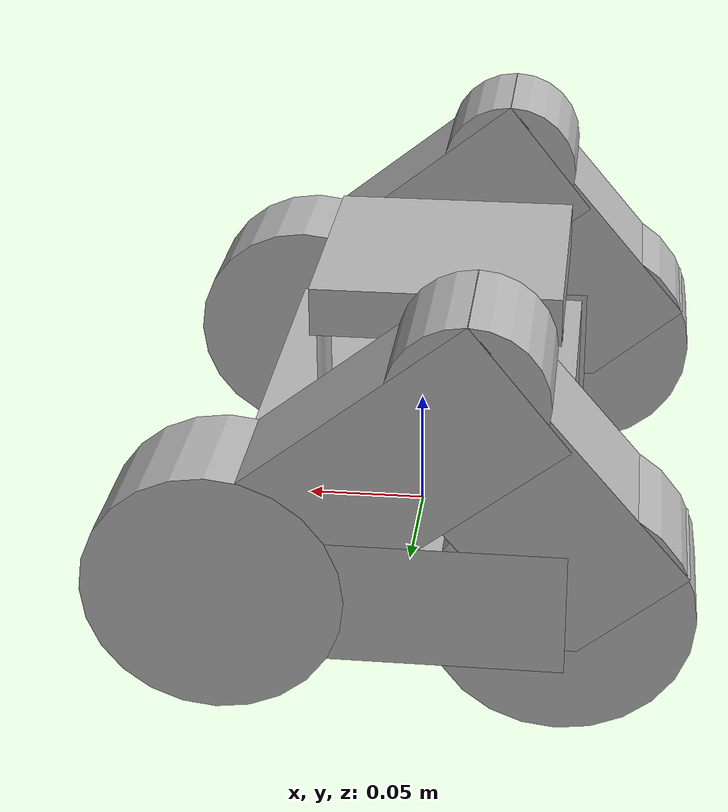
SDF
<?xml version='1.0'?>
<sdf version='1.3'>
  <model name="tank_tread2">

    <link name='chassis'>
      <pose>0 0 0.035 0 0 0</pose>
      <collision name='collision'>
        <geometry>
          <box>
            <size>0.13 0.18 0.0445</size>
          </box>
        </geometry>
      </collision>
      <visual name='visual'>
        <geometry>
          <box>
            <size>0.13 0.18 0.0445</size>
          </box>
        </geometry>
      </visual>
    </link>

    <link name='plate'>
      <pose>-0.01 0 0.111 0 0 0</pose>
      <collision name='collision'>
        <geometry>
          <box>
            <size>0.10 0.10 0.02</size>
          </box>
        </geometry>
      </collision>
      <visual name='visual'>
        <geometry>
          <box>
            <size>0.10 0.10 0.02</size>
          </box>
        </geometry>
      </visual>
    </link>

    <link name='plate_pole1'>
      <pose>0.035 0.045 0.088125 0 0 0</pose>
      <collision name='collision'>
        <geometry>
          <cylinder>
          	<radius>0.003</radius>
          	<length>0.06</length>
          </cylinder>
        </geometry>
      </collision>
      <visual name='visual'>
        <geometry>
          <cylinder>
          	<radius>0.003</radius>
          	<length>0.06</length>
          </cylinder>
        </geometry>
      </visual>
    </link>

    <link name='plate_pole2'>
      <pose>0.035 -0.045 0.088125 0 0 0</pose>
      <collision name='collision'>
        <geometry>
          <cylinder>
          	<radius>0.003</radius>
          	<length>0.06</length>
          </cylinder>
        </geometry>
      </collision>
      <visual name='visual'>
        <geometry>
          <cylinder>
          	<radius>0.003</radius>
          	<length>0.06</length>
          </cylinder>
        </geometry>
      </visual>
    </link>

    <link name='plate_pole3'>
      <pose>-0.055 0.045 0.088125 0 0 0</pose>
      <collision name='collision'>
        <geometry>
          <cylinder>
          	<radius>0.003</radius>
          	<length>0.06</length>
          </cylinder>
        </geometry>
      </collision>
      <visual name='visual'>
        <geometry>
          <cylinder>
          	<radius>0.003</radius>
          	<length>0.06</length>
          </cylinder>
        </geometry>
      </visual>
    </link>

    <link name='plate_pole4'>
      <pose>-0.055 -0.045 0.088125 0 0 0</pose>
      <collision name='collision'>
        <geometry>
          <cylinder>
          	<radius>0.003</radius>
          	<length>0.06</length>
          </cylinder>
        </geometry>
      </collision>
      <visual name='visual'>
        <geometry>
          <cylinder>
          	<radius>0.003</radius>
          	<length>0.06</length>
          </cylinder>
        </geometry>
      </visual>
    </link>

  <link name="left_backwheel">
  	<pose>-0.065 0.115 0.035 0 1.5707 1.5707</pose>
    <collision name="collision">
      <geometry>
        <cylinder>
          <radius>.05</radius>
          <length>.05</length>
        </cylinder>
      </geometry>
    </collision>
    <visual name="visual">
      <geometry>
        <cylinder>
          <radius>.05</radius>
          <length>.05</length>
        </cylinder>
      </geometry>
    </visual>
  </link>

  <link name="right_backwheel">
  	<pose>-0.065 -0.115 0.035 0 1.5707 1.5707</pose>
    <collision name="collision">
      <geometry>
        <cylinder>
          <radius>.05</radius>
          <length>.05</length>
        </cylinder>
      </geometry>
    </collision>
    <visual name="visual">
      <geometry>
        <cylinder>
          <radius>.05</radius>
          <length>.05</length>
        </cylinder>
      </geometry>
    </visual>
  </link>

  <link name="left_frontwheel">
  	<pose>0.065 0.115 0.035 0 1.5707 1.5707</pose>
    <collision name="collision">
      <geometry>
        <cylinder>
          <radius>.05</radius>
          <length>.05</length>
        </cylinder>
      </geometry>
    </collision>
    <visual name="visual">
      <geometry>
        <cylinder>
          <radius>.05</radius>
          <length>.05</length>
        </cylinder>
      </geometry>
    </visual>
  </link>

  <link name="right_frontwheel">
  	<pose>0.065 -0.115 0.035 0 1.5707 1.5707</pose>
    <collision name="collision">
      <geometry>
        <cylinder>
          <radius>.05</radius>
          <length>.05</length>
        </cylinder>
      </geometry>
    </collision>
    <visual name="visual">
      <geometry>
        <cylinder>
          <radius>.05</radius>
          <length>.05</length>
        </cylinder>
       </geometry>
    </visual>
  </link>

  <link name="left_topwheel">
  	<pose>-0.03 0.115 0.12 0 1.5707 1.5707</pose>
    <collision name="collision">
      <geometry>
        <cylinder>
          <radius>.03</radius>
          <length>.05</length>
        </cylinder>
      </geometry>
    </collision>
    <visual name="visual">
      <geometry>
        <cylinder>
          <radius>.03</radius>
          <length>.05</length>
        </cylinder>
      </geometry>
    </visual>
  </link>

  <link name="right_topwheel">
  	<pose>-0.03 -0.115 0.12 0 1.5707 1.5707</pose>
    <collision name="collision">
      <geometry>
        <cylinder>
          <radius>.03</radius>
          <length>.05</length>
        </cylinder>
      </geometry>
    </collision>
    <visual name="visual">
      <geometry>
        <cylinder>
          <radius>.03</radius>
          <length>.05</length>
        </cylinder>
      </geometry>
    </visual>
  </link>

    <link name='left_track'>
      <pose>0.0127 0.115 0.035 0 0 1.5707</pose>
      <collision name='collision'>
        <geometry>
          <box>
            <size>0.05 0.16 0.05</size>
          </box>
        </geometry>
      </collision>
      <visual name='visual'>
        <geometry>
          <box>
            <size>0.05 0.16 0.05</size>
          </box>
        </geometry>
      </visual>
    </link>

    <link name='right_track'>
      <pose>0.0127 -0.115 0.035 0 0 1.5707</pose>
      <collision name='collision'>
        <geometry>
          <box>
            <size>0.05 0.16 0.05</size>
          </box>
        </geometry>
      </collision>
      <visual name='visual'>
        <geometry>
          <box>
            <size>0.05 0.16 0.05</size>
          </box>
        </geometry>
      </visual>
    </link>

    <link name='left_topbacktrack'>
      <pose>-0.05 0.115 0.08 0.70 0 1.5707</pose>
      <collision name='collision'>
        <geometry>
          <box>
            <size>0.05 0.06 0.12</size>
          </box>
        </geometry>
      </collision>
      <visual name='visual'>
        <geometry>
          <box>
            <size>0.05 0.06 0.12</size>
          </box>
        </geometry>
      </visual>
    </link>

    <link name='right_topbacktrack'>
      <pose>-0.05 -0.115 0.08 0.70 0 1.5707</pose>
      <collision name='collision'>
        <geometry>
          <box>
            <size>0.05 0.06 0.12</size>
          </box>
        </geometry>
      </collision>
      <visual name='visual'>
        <geometry>
          <box>
            <size>0.05 0.06 0.12</size>
          </box>
        </geometry>
      </visual>
    </link>

    <link name='left_topfronttrack'>
      <pose>0.01 0.115 0.08 -0.90 0 1.5707</pose>
      <collision name='collision'>
        <geometry>
          <box>
            <size>0.05 0.06 0.15</size>
          </box>
        </geometry>
      </collision>
      <visual name='visual'>
        <geometry>
          <box>
            <size>0.05 0.06 0.15</size>
          </box>
        </geometry>
      </visual>
    </link>

    <link name='right_topfronttrack'>
      <pose>0.01 -0.115 0.08 -0.90 0 1.5707</pose>
      <collision name='collision'>
        <geometry>
          <box>
            <size>0.05 0.06 0.15</size>
          </box>
        </geometry>
      </collision>
      <visual name='visual'>
        <geometry>
          <box>
            <size>0.05 0.06 0.15</size>
          </box>
        </geometry>
      </visual>
    </link>

  <joint type="revolute" name="left_track_hinge">
    <pose>0 0 0 0 0 0</pose>
    <child>left_track</child>
    <parent>chassis</parent>
    <axis>
      <xyz>0 1 0</xyz>
    </axis>
  </joint>
  <joint type="revolute" name="right_track_hinge">
    <pose>0 0 0 0 0 0</pose>
    <child>right_track</child>
    <parent>chassis</parent>
    <axis>
      <xyz>0 1 0</xyz>
    </axis>
  </joint>

  <joint type="revolute" name="left_top_hinge">
    <pose>0 0 0 0 0 0</pose>
    <child>left_topwheel</child>
    <parent>chassis</parent>
    <axis>
      <xyz>0 1 0</xyz>
    </axis>
  </joint>
  <joint type="revolute" name="right_top_hinge">
    <pose>0 0 0 0 0 0</pose>
    <child>right_topwheel</child>
    <parent>chassis</parent>
    <axis>
      <xyz>0 1 0</xyz>
    </axis>
  </joint>

  <joint type="revolute" name="left_topback_hinge">
    <pose>0 0 0 0 0 0</pose>
    <child>left_topbacktrack</child>
    <parent>chassis</parent>
    <axis>
      <xyz>0 1 0</xyz>
    </axis>
  </joint>
  <joint type="revolute" name="right_topback_hinge">
    <pose>0 0 0 0 0 0</pose>
    <child>right_topbacktrack</child>
    <parent>chassis</parent>
    <axis>
      <xyz>0 1 0</xyz>
    </axis>
  </joint>

  <joint type="revolute" name="left_topfront_hinge">
    <pose>0 0 0 0 0 0</pose>
    <child>left_topfronttrack</child>
    <parent>chassis</parent>
    <axis>
      <xyz>0 1 0</xyz>
    </axis>
  </joint>
  <joint type="revolute" name="right_topfront_hinge">
    <pose>0 0 0 0 0 0</pose>
    <child>right_topfronttrack</child>
    <parent>chassis</parent>
    <axis>
      <xyz>0 1 0</xyz>
    </axis>
  </joint>

  <joint type="revolute" name="left_backwheel_hinge">
    <pose>0 0 0 0 0 0</pose>
    <child>left_backwheel</child>
    <parent>chassis</parent>
    <axis>
      <xyz>0 1 0</xyz>
    </axis>
  </joint>

  <joint type="revolute" name="left_frontwheel_hinge">
    <pose>0 0 0 0 0 0</pose>
    <child>left_frontwheel</child>
    <parent>chassis</parent>
    <axis>
      <xyz>0 1 0</xyz>
    </axis>
  </joint>

  <joint type="revolute" name="right_backwheel_hinge">
    <pose>0 0 0 0 0 0</pose>
    <child>right_backwheel</child>
    <parent>chassis</parent>
    <axis>
      <xyz>0 1 0</xyz>
    </axis>
  </joint>

  <joint type="revolute" name="right_frontwheel_hinge">
    <pose>0 0 0 0 0 0</pose>
    <child>right_frontwheel</child>
    <parent>chassis</parent>
    <axis>
      <xyz>0 1 0</xyz>
    </axis>
  </joint>

  <joint type="revolute" name="plate_pole1_hinge">
    <pose>0 0 0 0 0 0</pose>
    <child>plate_pole1</child>
    <parent>chassis</parent>
    <axis>
      <xyz>0 1 0</xyz>
    </axis>
  </joint>

  <joint type="revolute" name="plate_pole2_hinge">
    <pose>0 0 0 0 0 0</pose>
    <child>plate_pole2</child>
    <parent>chassis</parent>
    <axis>
      <xyz>0 1 0</xyz>
    </axis>
  </joint>

  <joint type="revolute" name="plate_pole3_hinge">
    <pose>0 0 0 0 0 0</pose>
    <child>plate_pole3</child>
    <parent>chassis</parent>
    <axis>
      <xyz>0 1 0</xyz>
    </axis>
  </joint>

  <joint type="revolute" name="plate_pole4_hinge">
    <pose>0 0 0 0 0 0</pose>
    <child>plate_pole4</child>
    <parent>chassis</parent>
    <axis>
      <xyz>0 1 0</xyz>
    </axis>
  </joint>

  <joint type="revolute" name="plate_hinge1">
    <pose>0 0 0 0 0 0</pose>
    <child>plate_pole1</child>
    <parent>plate</parent>
    <axis>
      <xyz>0 0 1</xyz>
    </axis>
  </joint>

  <joint type="revolute" name="plate_hinge2">
    <pose>0 0 0 0 0 0</pose>
    <child>plate_pole2</child>
    <parent>plate</parent>
    <axis>
      <xyz>0 0 1</xyz>
    </axis>
  </joint>
  <joint type="revolute" name="plate_hinge3">
    <pose>0 0 0 0 0 0</pose>
    <child>plate_pole3</child>
    <parent>plate</parent>
    <axis>
      <xyz>0 0 1</xyz>
    </axis>
  </joint>
  <joint type="revolute" name="plate_hinge4">
    <pose>0 0 0 0 0 0</pose>
    <child>plate_pole4</child>
    <parent>plate</parent>
    <axis>
      <xyz>0 0 1</xyz>
    </axis>
  </joint>

  </model>
</sdf>
